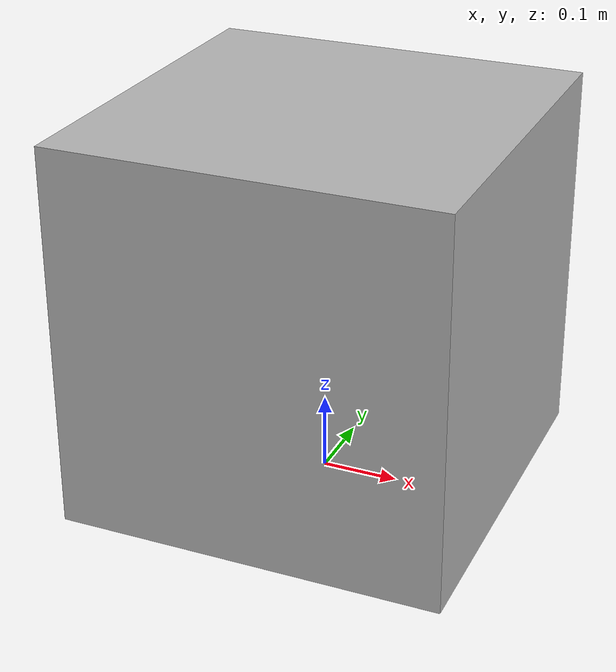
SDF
<?xml  version="1.0" ?>
<sdf version="1.5">

 <model name='aruco_box'>
      <pose>0 0 0.25 0 -0 0</pose>
      <link name='link'>
        <inertial>
          <mass>1</mass>
          <inertia>
            <ixx>0.166667</ixx>
            <ixy>0</ixy>
            <ixz>0</ixz>
            <iyy>0.166667</iyy>
            <iyz>0</iyz>
            <izz>0.166667</izz>
          </inertia>
          <pose>0 0 0 0 -0 0</pose>
        </inertial>
        <collision name='collision'>
          <geometry>
            <box>
              <size>0.5 0.5 0.5</size>
            </box>
          </geometry>
          <surface>
            <contact>
              <ode/>
            </contact>
            <bounce/>
            <friction>
              <torsional>
                <ode/>
              </torsional>
              <ode/>
            </friction>
          </surface>
          <max_contacts>10</max_contacts>
        </collision>
        <visual name='aruco_box_mesh'>
          <geometry>
            <mesh>
                <uri>model://aruco_box/model.dae</uri>
                <scale>0.25 0.25 0.25</scale>
            </mesh>
          </geometry>
        </visual>
        <self_collide>0</self_collide>
        <enable_wind>0</enable_wind>
        <kinematic>0</kinematic>
      </link>
    </model>
    </sdf>
